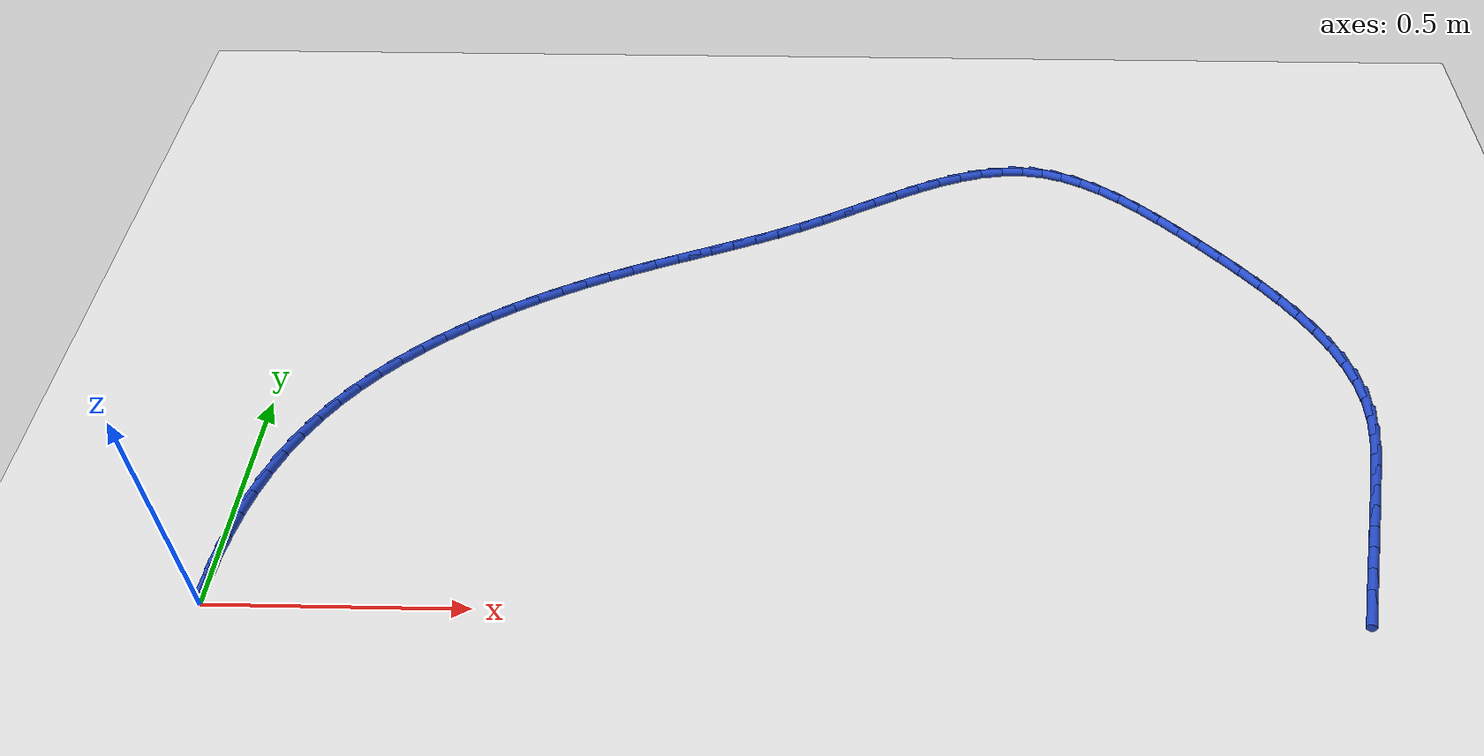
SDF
<sdf version="1.6">
 <world name="default">
  <model name="ground_plane">
   <static>1</static>
   <link name="link">
    <collision name="collision">
     <geometry><plane><normal>0 0 1</normal><size>100 100</size></plane></geometry>
     <surface><friction><ode><mu>100</mu><mu2>50</mu2></ode></friction></surface>
    </collision>
    <visual name="visual">
     <cast_shadows>0</cast_shadows>
     <geometry><plane><normal>0 0 1</normal><size>100 100</size></plane></geometry>
     <material>
      <script><uri>file://media/materials/scripts/gazebo.material</uri><name>Gazebo/WhiteGlow</name></script>
     </material>
    </visual>
   </link>
  </model>
  <model name="line">
   <link name="link_1">
    <pose>0.0008200648605110411 0.05451595755726912 0.01 0 1.57 1.5050673711794076</pose>
    <collision name="collision">
     <geometry><cylinder><radius>0.01</radius><length>0.08</length></cylinder></geometry>
    </collision>
    <visual name="visual">
     <material>
      <script><name>Gazebo/Blue</name><uri>file://media/materials/scripts/gazebo.material</uri></script>
     </material>
     <geometry><cylinder><radius>0.01</radius><length>0.08</length></cylinder></geometry>
    </visual>
   </link>
   <link name="link_2">
    <pose>0.004396346790956089 0.10884711518278226 0.01 0 1.57 1.4518409554157006</pose>
    <collision name="collision">
     <geometry><cylinder><radius>0.01</radius><length>0.08</length></cylinder></geometry>
    </collision>
    <visual name="visual">
     <material>
      <script><name>Gazebo/Blue</name><uri>file://media/materials/scripts/gazebo.material</uri></script>
     </material>
     <geometry><cylinder><radius>0.01</radius><length>0.08</length></cylinder></geometry>
    </visual>
   </link>
   <link name="link_3">
    <pose>0.010837198205843404 0.16273659051005376 0.01 0 1.57 1.3956293065094485</pose>
    <collision name="collision">
     <geometry><cylinder><radius>0.01</radius><length>0.08</length></cylinder></geometry>
    </collision>
    <visual name="visual">
     <material>
      <script><name>Gazebo/Blue</name><uri>file://media/materials/scripts/gazebo.material</uri></script>
     </material>
     <geometry><cylinder><radius>0.01</radius><length>0.08</length></cylinder></geometry>
    </visual>
   </link>
   <link name="link_4">
    <pose>0.020250971519681284 0.21592750117259812 0.01 0 1.57 1.3360020327878124</pose>
    <collision name="collision">
     <geometry><cylinder><radius>0.01</radius><length>0.08</length></cylinder></geometry>
    </collision>
    <visual name="visual">
     <material>
      <script><name>Gazebo/Blue</name><uri>file://media/materials/scripts/gazebo.material</uri></script>
     </material>
     <geometry><cylinder><radius>0.01</radius><length>0.08</length></cylinder></geometry>
    </visual>
   </link>
   <link name="link_5">
    <pose>0.03274601914697797 0.26816296480392954 0.01 0 1.57 1.2725615272935986</pose>
    <collision name="collision">
     <geometry><cylinder><radius>0.01</radius><length>0.08</length></cylinder></geometry>
    </collision>
    <visual name="visual">
     <material>
      <script><name>Gazebo/Blue</name><uri>file://media/materials/scripts/gazebo.material</uri></script>
     </material>
     <geometry><cylinder><radius>0.01</radius><length>0.08</length></cylinder></geometry>
    </visual>
   </link>
   <link name="link_6">
    <pose>0.04843069350224178 0.31918609903756245 0.01 0 1.57 1.204968856224903</pose>
    <collision name="collision">
     <geometry><cylinder><radius>0.01</radius><length>0.08</length></cylinder></geometry>
    </collision>
    <visual name="visual">
     <material>
      <script><name>Gazebo/Blue</name><uri>file://media/materials/scripts/gazebo.material</uri></script>
     </material>
     <geometry><cylinder><radius>0.01</radius><length>0.08</length></cylinder></geometry>
    </visual>
   </link>
   <link name="link_7">
    <pose>0.06741334699998093 0.36874002150701113 0.01 0 1.57 1.1329794530025175</pose>
    <collision name="collision">
     <geometry><cylinder><radius>0.01</radius><length>0.08</length></cylinder></geometry>
    </collision>
    <visual name="visual">
     <material>
      <script><name>Gazebo/Blue</name><uri>file://media/materials/scripts/gazebo.material</uri></script>
     </material>
     <geometry><cylinder><radius>0.01</radius><length>0.08</length></cylinder></geometry>
    </visual>
   </link>
   <link name="link_8">
    <pose>0.08980233205470373 0.4165678498457899 0.01 0 1.57 1.0568599665323917</pose>
    <collision name="collision">
     <geometry><cylinder><radius>0.01</radius><length>0.08</length></cylinder></geometry>
    </collision>
    <visual name="visual">
     <material>
      <script><name>Gazebo/Blue</name><uri>file://media/materials/scripts/gazebo.material</uri></script>
     </material>
     <geometry><cylinder><radius>0.01</radius><length>0.08</length></cylinder></geometry>
    </visual>
   </link>
   <link name="link_9">
    <pose>0.11569056184922914 0.4624252130635277 0.01 0 1.57 0.9817550211952442</pose>
    <collision name="collision">
     <geometry><cylinder><radius>0.01</radius><length>0.08</length></cylinder></geometry>
    </collision>
    <visual name="visual">
     <material>
      <script><name>Gazebo/Blue</name><uri>file://media/materials/scripts/gazebo.material</uri></script>
     </material>
     <geometry><cylinder><radius>0.01</radius><length>0.08</length></cylinder></geometry>
    </visual>
   </link>
   <link name="link_10">
    <pose>0.14496345431723184 0.5062358865618725 0.01 0 1.57 0.9115878039380247</pose>
    <collision name="collision">
     <geometry><cylinder><radius>0.01</radius><length>0.08</length></cylinder></geometry>
    </collision>
    <visual name="visual">
     <material>
      <script><name>Gazebo/Blue</name><uri>file://media/materials/scripts/gazebo.material</uri></script>
     </material>
     <geometry><cylinder><radius>0.01</radius><length>0.08</length></cylinder></geometry>
    </visual>
   </link>
   <link name="link_11">
    <pose>0.17735793236877923 0.5480439805576308 0.01 0 1.57 0.8466045933925027</pose>
    <collision name="collision">
     <geometry><cylinder><radius>0.01</radius><length>0.08</length></cylinder></geometry>
    </collision>
    <visual name="visual">
     <material>
      <script><name>Gazebo/Blue</name><uri>file://media/materials/scripts/gazebo.material</uri></script>
     </material>
     <geometry><cylinder><radius>0.01</radius><length>0.08</length></cylinder></geometry>
    </visual>
   </link>
   <link name="link_12">
    <pose>0.21260769531818516 0.5878962175490843 0.01 0 1.57 0.7867752115742281</pose>
    <collision name="collision">
     <geometry><cylinder><radius>0.01</radius><length>0.08</length></cylinder></geometry>
    </collision>
    <visual name="visual">
     <material>
      <script><name>Gazebo/Blue</name><uri>file://media/materials/scripts/gazebo.material</uri></script>
     </material>
     <geometry><cylinder><radius>0.01</radius><length>0.08</length></cylinder></geometry>
    </visual>
   </link>
   <link name="link_13">
    <pose>0.2504464424797634 0.6258393200345136 0.01 0 1.57 0.7319257513694877</pose>
    <collision name="collision">
     <geometry><cylinder><radius>0.01</radius><length>0.08</length></cylinder></geometry>
    </collision>
    <visual name="visual">
     <material>
      <script><name>Gazebo/Blue</name><uri>file://media/materials/scripts/gazebo.material</uri></script>
     </material>
     <geometry><cylinder><radius>0.01</radius><length>0.08</length></cylinder></geometry>
    </visual>
   </link>
   <link name="link_14">
    <pose>0.29060787316782766 0.6619200105121996 0.01 0 1.57 0.6817888142367023</pose>
    <collision name="collision">
     <geometry><cylinder><radius>0.01</radius><length>0.08</length></cylinder></geometry>
    </collision>
    <visual name="visual">
     <material>
      <script><name>Gazebo/Blue</name><uri>file://media/materials/scripts/gazebo.material</uri></script>
     </material>
     <geometry><cylinder><radius>0.01</radius><length>0.08</length></cylinder></geometry>
    </visual>
   </link>
   <link name="link_15">
    <pose>0.332825686696692 0.6961850114804236 0.01 0 1.57 0.6360445579904854</pose>
    <collision name="collision">
     <geometry><cylinder><radius>0.01</radius><length>0.08</length></cylinder></geometry>
    </collision>
    <visual name="visual">
     <material>
      <script><name>Gazebo/Blue</name><uri>file://media/materials/scripts/gazebo.material</uri></script>
     </material>
     <geometry><cylinder><radius>0.01</radius><length>0.08</length></cylinder></geometry>
    </visual>
   </link>
   <link name="link_16">
    <pose>0.3768335823806701 0.7286810454374665 0.01 0 1.57 0.5943515515108755</pose>
    <collision name="collision">
     <geometry><cylinder><radius>0.01</radius><length>0.08</length></cylinder></geometry>
    </collision>
    <visual name="visual">
     <material>
      <script><name>Gazebo/Blue</name><uri>file://media/materials/scripts/gazebo.material</uri></script>
     </material>
     <geometry><cylinder><radius>0.01</radius><length>0.08</length></cylinder></geometry>
    </visual>
   </link>
   <link name="link_17">
    <pose>0.4223652595340758 0.7594548348816091 0.01 0 1.57 0.5563683840970425</pose>
    <collision name="collision">
     <geometry><cylinder><radius>0.01</radius><length>0.08</length></cylinder></geometry>
    </collision>
    <visual name="visual">
     <material>
      <script><name>Gazebo/Blue</name><uri>file://media/materials/scripts/gazebo.material</uri></script>
     </material>
     <geometry><cylinder><radius>0.01</radius><length>0.08</length></cylinder></geometry>
    </visual>
   </link>
   <link name="link_18">
    <pose>0.469154417471223 0.7885531023111331 0.01 0 1.57 0.5217678002501723</pose>
    <collision name="collision">
     <geometry><cylinder><radius>0.01</radius><length>0.08</length></cylinder></geometry>
    </collision>
    <visual name="visual">
     <material>
      <script><name>Gazebo/Blue</name><uri>file://media/materials/scripts/gazebo.material</uri></script>
     </material>
     <geometry><cylinder><radius>0.01</radius><length>0.08</length></cylinder></geometry>
    </visual>
   </link>
   <link name="link_19">
    <pose>0.5169347555064254 0.8160225702243189 0.01 0 1.57 0.4902452585843131</pose>
    <collision name="collision">
     <geometry><cylinder><radius>0.01</radius><length>0.08</length></cylinder></geometry>
    </collision>
    <visual name="visual">
     <material>
      <script><name>Gazebo/Blue</name><uri>file://media/materials/scripts/gazebo.material</uri></script>
     </material>
     <geometry><cylinder><radius>0.01</radius><length>0.08</length></cylinder></geometry>
    </visual>
   </link>
   <link name="link_20">
    <pose>0.5654399729539971 0.8419099611194478 0.01 0 1.57 0.4615235999922261</pose>
    <collision name="collision">
     <geometry><cylinder><radius>0.01</radius><length>0.08</length></cylinder></geometry>
    </collision>
    <visual name="visual">
     <material>
      <script><name>Gazebo/Blue</name><uri>file://media/materials/scripts/gazebo.material</uri></script>
     </material>
     <geometry><cylinder><radius>0.01</radius><length>0.08</length></cylinder></geometry>
    </visual>
   </link>
   <link name="link_21">
    <pose>0.6144037691282513 0.8662619974948006 0.01 0 1.57 0.4353551821730655</pose>
    <collision name="collision">
     <geometry><cylinder><radius>0.01</radius><length>0.08</length></cylinder></geometry>
    </collision>
    <visual name="visual">
     <material>
      <script><name>Gazebo/Blue</name><uri>file://media/materials/scripts/gazebo.material</uri></script>
     </material>
     <geometry><cylinder><radius>0.01</radius><length>0.08</length></cylinder></geometry>
    </visual>
   </link>
   <link name="link_22">
    <pose>0.6635598433435026 0.8891254018486585 0.01 0 1.57 0.41154979110121537</pose>
    <collision name="collision">
     <geometry><cylinder><radius>0.01</radius><length>0.08</length></cylinder></geometry>
    </collision>
    <visual name="visual">
     <material>
      <script><name>Gazebo/Blue</name><uri>file://media/materials/scripts/gazebo.material</uri></script>
     </material>
     <geometry><cylinder><radius>0.01</radius><length>0.08</length></cylinder></geometry>
    </visual>
   </link>
   <link name="link_23">
    <pose>0.7126441373887852 0.9105494691565788 0.01 0 1.57 0.39162564742065387</pose>
    <collision name="collision">
     <geometry><cylinder><radius>0.01</radius><length>0.08</length></cylinder></geometry>
    </collision>
    <visual name="visual">
     <material>
      <script><name>Gazebo/Blue</name><uri>file://media/materials/scripts/gazebo.material</uri></script>
     </material>
     <geometry><cylinder><radius>0.01</radius><length>0.08</length></cylinder></geometry>
    </visual>
   </link>
   <link name="link_24">
    <pose>0.7615246641967388 0.9307350011257711 0.01 0 1.57 0.37841411007136366</pose>
    <collision name="collision">
     <geometry><cylinder><radius>0.01</radius><length>0.08</length></cylinder></geometry>
    </collision>
    <visual name="visual">
     <material>
      <script><name>Gazebo/Blue</name><uri>file://media/materials/scripts/gazebo.material</uri></script>
     </material>
     <geometry><cylinder><radius>0.01</radius><length>0.08</length></cylinder></geometry>
    </visual>
   </link>
   <link name="link_25">
    <pose>0.8102727350679035 0.9501160152169417 0.01 0 1.57 0.37249266737449443</pose>
    <collision name="collision">
     <geometry><cylinder><radius>0.01</radius><length>0.08</length></cylinder></geometry>
    </collision>
    <visual name="visual">
     <material>
      <script><name>Gazebo/Blue</name><uri>file://media/materials/scripts/gazebo.material</uri></script>
     </material>
     <geometry><cylinder><radius>0.01</radius><length>0.08</length></cylinder></geometry>
    </visual>
   </link>
   <link name="link_26">
    <pose>0.8589769853498858 0.9691464023444392 0.01 0 1.57 0.3740178413786772</pose>
    <collision name="collision">
     <geometry><cylinder><radius>0.01</radius><length>0.08</length></cylinder></geometry>
    </collision>
    <visual name="visual">
     <material>
      <script><name>Gazebo/Blue</name><uri>file://media/materials/scripts/gazebo.material</uri></script>
     </material>
     <geometry><cylinder><radius>0.01</radius><length>0.08</length></cylinder></geometry>
    </visual>
   </link>
   <link name="link_27">
    <pose>0.9077260503902914 0.9882800534226118 0.01 0 1.57 0.3829341860649818</pose>
    <collision name="collision">
     <geometry><cylinder><radius>0.01</radius><length>0.08</length></cylinder></geometry>
    </collision>
    <visual name="visual">
     <material>
      <script><name>Gazebo/Blue</name><uri>file://media/materials/scripts/gazebo.material</uri></script>
     </material>
     <geometry><cylinder><radius>0.01</radius><length>0.08</length></cylinder></geometry>
    </visual>
   </link>
   <link name="link_28">
    <pose>0.956608565536727 1.007970859365809 0.01 0 1.57 0.39897609293077424</pose>
    <collision name="collision">
     <geometry><cylinder><radius>0.01</radius><length>0.08</length></cylinder></geometry>
    </collision>
    <visual name="visual">
     <material>
      <script><name>Gazebo/Blue</name><uri>file://media/materials/scripts/gazebo.material</uri></script>
     </material>
     <geometry><cylinder><radius>0.01</radius><length>0.08</length></cylinder></geometry>
    </visual>
   </link>
   <link name="link_29">
    <pose>1.0057131661367986 1.0286727110883789 0.01 0 1.57 0.4216734961333918</pose>
    <collision name="collision">
     <geometry><cylinder><radius>0.01</radius><length>0.08</length></cylinder></geometry>
    </collision>
    <visual name="visual">
     <material>
      <script><name>Gazebo/Blue</name><uri>file://media/materials/scripts/gazebo.material</uri></script>
     </material>
     <geometry><cylinder><radius>0.01</radius><length>0.08</length></cylinder></geometry>
    </visual>
   </link>
   <link name="link_30">
    <pose>1.0551284875381124 1.0508394995046701 0.01 0 1.57 0.4503636769735263</pose>
    <collision name="collision">
     <geometry><cylinder><radius>0.01</radius><length>0.08</length></cylinder></geometry>
    </collision>
    <visual name="visual">
     <material>
      <script><name>Gazebo/Blue</name><uri>file://media/materials/scripts/gazebo.material</uri></script>
     </material>
     <geometry><cylinder><radius>0.01</radius><length>0.08</length></cylinder></geometry>
    </visual>
   </link>
   <link name="link_31">
    <pose>1.1049431589496737 1.0749250765799137 0.01 0 1.57 0.4800818102077247</pose>
    <collision name="collision">
     <geometry><cylinder><radius>0.01</radius><length>0.08</length></cylinder></geometry>
    </collision>
    <visual name="visual">
     <material>
      <script><name>Gazebo/Blue</name><uri>file://media/materials/scripts/gazebo.material</uri></script>
     </material>
     <geometry><cylinder><radius>0.01</radius><length>0.08</length></cylinder></geometry>
    </visual>
   </link>
   <link name="link_32">
    <pose>1.1552003304086138 1.1010947311885868 0.01 0 1.57 0.496960831944077</pose>
    <collision name="collision">
     <geometry><cylinder><radius>0.01</radius><length>0.08</length></cylinder></geometry>
    </collision>
    <visual name="visual">
     <material>
      <script><name>Gazebo/Blue</name><uri>file://media/materials/scripts/gazebo.material</uri></script>
     </material>
     <geometry><cylinder><radius>0.01</radius><length>0.08</length></cylinder></geometry>
    </visual>
   </link>
   <link name="link_33">
    <pose>1.2057883932143312 1.1285318156869555 0.01 0 1.57 0.49910432871639004</pose>
    <collision name="collision">
     <geometry><cylinder><radius>0.01</radius><length>0.08</length></cylinder></geometry>
    </collision>
    <visual name="visual">
     <material>
      <script><name>Gazebo/Blue</name><uri>file://media/materials/scripts/gazebo.material</uri></script>
     </material>
     <geometry><cylinder><radius>0.01</radius><length>0.08</length></cylinder></geometry>
    </visual>
   </link>
   <link name="link_34">
    <pose>1.256562850258894 1.1562110071173273 0.01 0 1.57 0.48679470036189326</pose>
    <collision name="collision">
     <geometry><cylinder><radius>0.01</radius><length>0.08</length></cylinder></geometry>
    </collision>
    <visual name="visual">
     <material>
      <script><name>Gazebo/Blue</name><uri>file://media/materials/scripts/gazebo.material</uri></script>
     </material>
     <geometry><cylinder><radius>0.01</radius><length>0.08</length></cylinder></geometry>
    </visual>
   </link>
   <link name="link_35">
    <pose>1.3073792044343693 1.1831069825220106 0.01 0 1.57 0.4593882063054732</pose>
    <collision name="collision">
     <geometry><cylinder><radius>0.01</radius><length>0.08</length></cylinder></geometry>
    </collision>
    <visual name="visual">
     <material>
      <script><name>Gazebo/Blue</name><uri>file://media/materials/scripts/gazebo.material</uri></script>
     </material>
     <geometry><cylinder><radius>0.01</radius><length>0.08</length></cylinder></geometry>
    </visual>
   </link>
   <link name="link_36">
    <pose>1.3580929586328243 1.2081944189433134 0.01 0 1.57 0.41530751775124203</pose>
    <collision name="collision">
     <geometry><cylinder><radius>0.01</radius><length>0.08</length></cylinder></geometry>
    </collision>
    <visual name="visual">
     <material>
      <script><name>Gazebo/Blue</name><uri>file://media/materials/scripts/gazebo.material</uri></script>
     </material>
     <geometry><cylinder><radius>0.01</radius><length>0.08</length></cylinder></geometry>
    </visual>
   </link>
   <link name="link_37">
    <pose>1.4085596157463276 1.2304479934235437 0.01 0 1.57 0.35203496237146453</pose>
    <collision name="collision">
     <geometry><cylinder><radius>0.01</radius><length>0.08</length></cylinder></geometry>
    </collision>
    <visual name="visual">
     <material>
      <script><name>Gazebo/Blue</name><uri>file://media/materials/scripts/gazebo.material</uri></script>
     </material>
     <geometry><cylinder><radius>0.01</radius><length>0.08</length></cylinder></geometry>
    </visual>
   </link>
   <link name="link_38">
    <pose>1.4586346786669466 1.2488423830050095 0.01 0 1.57 0.26623801589896795</pose>
    <collision name="collision">
     <geometry><cylinder><radius>0.01</radius><length>0.08</length></cylinder></geometry>
    </collision>
    <visual name="visual">
     <material>
      <script><name>Gazebo/Blue</name><uri>file://media/materials/scripts/gazebo.material</uri></script>
     </material>
     <geometry><cylinder><radius>0.01</radius><length>0.08</length></cylinder></geometry>
    </visual>
   </link>
   <link name="link_39">
    <pose>1.5081736502867489 1.2623522647300194 0.01 0 1.57 0.15431593757000223</pose>
    <collision name="collision">
     <geometry><cylinder><radius>0.01</radius><length>0.08</length></cylinder></geometry>
    </collision>
    <visual name="visual">
     <material>
      <script><name>Gazebo/Blue</name><uri>file://media/materials/scripts/gazebo.material</uri></script>
     </material>
     <geometry><cylinder><radius>0.01</radius><length>0.08</length></cylinder></geometry>
    </visual>
   </link>
   <link name="link_40">
    <pose>1.5570320334978012 1.2699523156408798 0.01 0 1.57 0.013841537188865709</pose>
    <collision name="collision">
     <geometry><cylinder><radius>0.01</radius><length>0.08</length></cylinder></geometry>
    </collision>
    <visual name="visual">
     <material>
      <script><name>Gazebo/Blue</name><uri>file://media/materials/scripts/gazebo.material</uri></script>
     </material>
     <geometry><cylinder><radius>0.01</radius><length>0.08</length></cylinder></geometry>
    </visual>
   </link>
   <link name="link_41">
    <pose>1.6050653311921725 1.2706172127799007 0.01 0 1.57 -0.1530114130559788</pose>
    <collision name="collision">
     <geometry><cylinder><radius>0.01</radius><length>0.08</length></cylinder></geometry>
    </collision>
    <visual name="visual">
     <material>
      <script><name>Gazebo/Blue</name><uri>file://media/materials/scripts/gazebo.material</uri></script>
     </material>
     <geometry><cylinder><radius>0.01</radius><length>0.08</length></cylinder></geometry>
    </visual>
   </link>
   <link name="link_42">
    <pose>1.6521323606039902 1.2633586847430738 0.01 0 1.57 -0.3194102189316025</pose>
    <collision name="collision">
     <geometry><cylinder><radius>0.01</radius><length>0.08</length></cylinder></geometry>
    </collision>
    <visual name="visual">
     <material>
      <script><name>Gazebo/Blue</name><uri>file://media/materials/scripts/gazebo.material</uri></script>
     </material>
     <geometry><cylinder><radius>0.01</radius><length>0.08</length></cylinder></geometry>
    </visual>
   </link>
   <link name="link_43">
    <pose>1.698176195550206 1.2481303777815838 0.01 0 1.57 -0.4587249353660347</pose>
    <collision name="collision">
     <geometry><cylinder><radius>0.01</radius><length>0.08</length></cylinder></geometry>
    </collision>
    <visual name="visual">
     <material>
      <script><name>Gazebo/Blue</name><uri>file://media/materials/scripts/gazebo.material</uri></script>
     </material>
     <geometry><cylinder><radius>0.01</radius><length>0.08</length></cylinder></geometry>
    </visual>
   </link>
   <link name="link_44">
    <pose>1.7432288827547004 1.2258805803342752 0.01 0 1.57 -0.570161706124903</pose>
    <collision name="collision">
     <geometry><cylinder><radius>0.01</radius><length>0.08</length></cylinder></geometry>
    </collision>
    <visual name="visual">
     <material>
      <script><name>Gazebo/Blue</name><uri>file://media/materials/scripts/gazebo.material</uri></script>
     </material>
     <geometry><cylinder><radius>0.01</radius><length>0.08</length></cylinder></geometry>
    </visual>
   </link>
   <link name="link_45">
    <pose>1.7873267274254852 1.1976051871071476 0.01 0 1.57 -0.6570073161786348</pose>
    <collision name="collision">
     <geometry><cylinder><radius>0.01</radius><length>0.08</length></cylinder></geometry>
    </collision>
    <visual name="visual">
     <material>
      <script><name>Gazebo/Blue</name><uri>file://media/materials/scripts/gazebo.material</uri></script>
     </material>
     <geometry><cylinder><radius>0.01</radius><length>0.08</length></cylinder></geometry>
    </visual>
   </link>
   <link name="link_46">
    <pose>1.8305060347705737 1.1643000928061977 0.01 0 1.57 -0.7232179390403781</pose>
    <collision name="collision">
     <geometry><cylinder><radius>0.01</radius><length>0.08</length></cylinder></geometry>
    </collision>
    <visual name="visual">
     <material>
      <script><name>Gazebo/Blue</name><uri>file://media/materials/scripts/gazebo.material</uri></script>
     </material>
     <geometry><cylinder><radius>0.01</radius><length>0.08</length></cylinder></geometry>
    </visual>
   </link>
   <link name="link_47">
    <pose>1.8728031099979794 1.1269611921374258 0.01 0 1.57 -0.7722697137196393</pose>
    <collision name="collision">
     <geometry><cylinder><radius>0.01</radius><length>0.08</length></cylinder></geometry>
    </collision>
    <visual name="visual">
     <material>
      <script><name>Gazebo/Blue</name><uri>file://media/materials/scripts/gazebo.material</uri></script>
     </material>
     <geometry><cylinder><radius>0.01</radius><length>0.08</length></cylinder></geometry>
    </visual>
   </link>
   <link name="link_48">
    <pose>1.9142542583157152 1.0865843798068282 0.01 0 1.57 -0.8067926237513624</pose>
    <collision name="collision">
     <geometry><cylinder><radius>0.01</radius><length>0.08</length></cylinder></geometry>
    </collision>
    <visual name="visual">
     <material>
      <script><name>Gazebo/Blue</name><uri>file://media/materials/scripts/gazebo.material</uri></script>
     </material>
     <geometry><cylinder><radius>0.01</radius><length>0.08</length></cylinder></geometry>
    </visual>
   </link>
   <link name="link_49">
    <pose>1.9548957849317943 1.044165550520405 0.01 0 1.57 -0.8286929260010305</pose>
    <collision name="collision">
     <geometry><cylinder><radius>0.01</radius><length>0.08</length></cylinder></geometry>
    </collision>
    <visual name="visual">
     <material>
      <script><name>Gazebo/Blue</name><uri>file://media/materials/scripts/gazebo.material</uri></script>
     </material>
     <geometry><cylinder><radius>0.01</radius><length>0.08</length></cylinder></geometry>
    </visual>
   </link>
   <link name="link_50">
    <pose>1.9947591201268489 1.0006919044576394 0.01 0 1.57 -0.8465490979296157</pose>
    <collision name="collision">
     <geometry><cylinder><radius>0.01</radius><length>0.08</length></cylinder></geometry>
    </collision>
    <visual name="visual">
     <material>
      <script><name>Gazebo/Blue</name><uri>file://media/materials/scripts/gazebo.material</uri></script>
     </material>
     <geometry><cylinder><radius>0.01</radius><length>0.08</length></cylinder></geometry>
    </visual>
   </link>
   <link name="link_51">
    <pose>2.033643117156977 0.9567358362126579 0.01 0 1.57 -0.8717102694216153</pose>
    <collision name="collision">
     <geometry><cylinder><radius>0.01</radius><length>0.08</length></cylinder></geometry>
    </collision>
    <visual name="visual">
     <material>
      <script><name>Gazebo/Blue</name><uri>file://media/materials/scripts/gazebo.material</uri></script>
     </material>
     <geometry><cylinder><radius>0.01</radius><length>0.08</length></cylinder></geometry>
    </visual>
   </link>
   <link name="link_52">
    <pose>2.0710169210331135 0.9122816993987162 0.01 0 1.57 -0.9056417686828994</pose>
    <collision name="collision">
     <geometry><cylinder><radius>0.01</radius><length>0.08</length></cylinder></geometry>
    </collision>
    <visual name="visual">
     <material>
      <script><name>Gazebo/Blue</name><uri>file://media/materials/scripts/gazebo.material</uri></script>
     </material>
     <geometry><cylinder><radius>0.01</radius><length>0.08</length></cylinder></geometry>
    </visual>
   </link>
   <link name="link_53">
    <pose>2.106324630868863 0.8672691777906644 0.01 0 1.57 -0.9492133114182162</pose>
    <collision name="collision">
     <geometry><cylinder><radius>0.01</radius><length>0.08</length></cylinder></geometry>
    </collision>
    <visual name="visual">
     <material>
      <script><name>Gazebo/Blue</name><uri>file://media/materials/scripts/gazebo.material</uri></script>
     </material>
     <geometry><cylinder><radius>0.01</radius><length>0.08</length></cylinder></geometry>
    </visual>
   </link>
   <link name="link_54">
    <pose>2.139010345777828 0.8216379551633507 0.01 0 1.57 -1.003488408451562</pose>
    <collision name="collision">
     <geometry><cylinder><radius>0.01</radius><length>0.08</length></cylinder></geometry>
    </collision>
    <visual name="visual">
     <material>
      <script><name>Gazebo/Blue</name><uri>file://media/materials/scripts/gazebo.material</uri></script>
     </material>
     <geometry><cylinder><radius>0.01</radius><length>0.08</length></cylinder></geometry>
    </visual>
   </link>
   <link name="link_55">
    <pose>2.168518164873613 0.7753277152916239 0.01 0 1.57 -1.0696393937264592</pose>
    <collision name="collision">
     <geometry><cylinder><radius>0.01</radius><length>0.08</length></cylinder></geometry>
    </collision>
    <visual name="visual">
     <material>
      <script><name>Gazebo/Blue</name><uri>file://media/materials/scripts/gazebo.material</uri></script>
     </material>
     <geometry><cylinder><radius>0.01</radius><length>0.08</length></cylinder></geometry>
    </visual>
   </link>
   <link name="link_56">
    <pose>2.194292187269821 0.728278141950333 0.01 0 1.57 -1.1487739009880455</pose>
    <collision name="collision">
     <geometry><cylinder><radius>0.01</radius><length>0.08</length></cylinder></geometry>
    </collision>
    <visual name="visual">
     <material>
      <script><name>Gazebo/Blue</name><uri>file://media/materials/scripts/gazebo.material</uri></script>
     </material>
     <geometry><cylinder><radius>0.01</radius><length>0.08</length></cylinder></geometry>
    </visual>
   </link>
   <link name="link_57">
    <pose>2.2157765120800557 0.6804289189143266 0.01 0 1.57 -1.241630429142435</pose>
    <collision name="collision">
     <geometry><cylinder><radius>0.01</radius><length>0.08</length></cylinder></geometry>
    </collision>
    <visual name="visual">
     <material>
      <script><name>Gazebo/Blue</name><uri>file://media/materials/scripts/gazebo.material</uri></script>
     </material>
     <geometry><cylinder><radius>0.01</radius><length>0.08</length></cylinder></geometry>
    </visual>
   </link>
   <link name="link_58">
    <pose>2.2324152384179214 0.631719729958454 0.01 0 1.57 -1.3481283788459681</pose>
    <collision name="collision">
     <geometry><cylinder><radius>0.01</radius><length>0.08</length></cylinder></geometry>
    </collision>
    <visual name="visual">
     <material>
      <script><name>Gazebo/Blue</name><uri>file://media/materials/scripts/gazebo.material</uri></script>
     </material>
     <geometry><cylinder><radius>0.01</radius><length>0.08</length></cylinder></geometry>
    </visual>
   </link>
   <link name="link_59">
    <pose>2.2436524653970213 0.5820902588575636 0.01 0 1.57 -1.4668486992127596</pose>
    <collision name="collision">
     <geometry><cylinder><radius>0.01</radius><length>0.08</length></cylinder></geometry>
    </collision>
    <visual name="visual">
     <material>
      <script><name>Gazebo/Blue</name><uri>file://media/materials/scripts/gazebo.material</uri></script>
     </material>
     <geometry><cylinder><radius>0.01</radius><length>0.08</length></cylinder></geometry>
    </visual>
   </link>
   <link name="link_60">
    <pose>2.248932292130959 0.5314801893865047 0.01 0 1.57 1.5481075125097459</pose>
    <collision name="collision">
     <geometry><cylinder><radius>0.01</radius><length>0.08</length></cylinder></geometry>
    </collision>
    <visual name="visual">
     <material>
      <script><name>Gazebo/Blue</name><uri>file://media/materials/scripts/gazebo.material</uri></script>
     </material>
     <geometry><cylinder><radius>0.01</radius><length>0.08</length></cylinder></geometry>
    </visual>
   </link>
   <link name="link_61">
    <pose>2.2477605343638296 0.4798443181246754 0.01 0 1.57 1.4399671318108693</pose>
    <collision name="collision">
     <geometry><cylinder><radius>0.01</radius><length>0.08</length></cylinder></geometry>
    </collision>
    <visual name="visual">
     <material>
      <script><name>Gazebo/Blue</name><uri>file://media/materials/scripts/gazebo.material</uri></script>
     </material>
     <geometry><cylinder><radius>0.01</radius><length>0.08</length></cylinder></geometry>
    </visual>
   </link>
   <link name="link_62">
    <pose>2.240864685935754 0.42743659897975306 0.01 0 1.57 1.3689984859225255</pose>
    <collision name="collision">
     <geometry><cylinder><radius>0.01</radius><length>0.08</length></cylinder></geometry>
    </collision>
    <visual name="visual">
     <material>
      <script><name>Gazebo/Blue</name><uri>file://media/materials/scripts/gazebo.material</uri></script>
     </material>
     <geometry><cylinder><radius>0.01</radius><length>0.08</length></cylinder></geometry>
    </visual>
   </link>
   <link name="link_63">
    <pose>2.2300931912438684 0.37478547762189884 0.01 0 1.57 1.331791199553235</pose>
    <collision name="collision">
     <geometry><cylinder><radius>0.01</radius><length>0.08</length></cylinder></geometry>
    </collision>
    <visual name="visual">
     <material>
      <script><name>Gazebo/Blue</name><uri>file://media/materials/scripts/gazebo.material</uri></script>
     </material>
     <geometry><cylinder><radius>0.01</radius><length>0.08</length></cylinder></geometry>
    </visual>
   </link>
   <link name="link_64">
    <pose>2.2173360190365723 0.32242956795955624 0.01 0 1.57 1.3218586392856893</pose>
    <collision name="collision">
     <geometry><cylinder><radius>0.01</radius><length>0.08</length></cylinder></geometry>
    </collision>
    <visual name="visual">
     <material>
      <script><name>Gazebo/Blue</name><uri>file://media/materials/scripts/gazebo.material</uri></script>
     </material>
     <geometry><cylinder><radius>0.01</radius><length>0.08</length></cylinder></geometry>
    </visual>
   </link>
   <link name="link_65">
    <pose>2.2042141581999113 0.2708115075608614 0.01 0 1.57 1.3188930635925054</pose>
    <collision name="collision">
     <geometry><cylinder><radius>0.01</radius><length>0.08</length></cylinder></geometry>
    </collision>
    <visual name="visual">
     <material>
      <script><name>Gazebo/Blue</name><uri>file://media/materials/scripts/gazebo.material</uri></script>
     </material>
     <geometry><cylinder><radius>0.01</radius><length>0.08</length></cylinder></geometry>
    </visual>
   </link>
   <link name="link_66">
    <pose>2.1911202199004194 0.21993562907030154 0.01 0 1.57 1.3172165367474906</pose>
    <collision name="collision">
     <geometry><cylinder><radius>0.01</radius><length>0.08</length></cylinder></geometry>
    </collision>
    <visual name="visual">
     <material>
      <script><name>Gazebo/Blue</name><uri>file://media/materials/scripts/gazebo.material</uri></script>
     </material>
     <geometry><cylinder><radius>0.01</radius><length>0.08</length></cylinder></geometry>
    </visual>
   </link>
   <link name="link_67">
    <pose>2.178096355582604 0.16968121546786363 0.01 0 1.57 1.3168856185074094</pose>
    <collision name="collision">
     <geometry><cylinder><radius>0.01</radius><length>0.08</length></cylinder></geometry>
    </collision>
    <visual name="visual">
     <material>
      <script><name>Gazebo/Blue</name><uri>file://media/materials/scripts/gazebo.material</uri></script>
     </material>
     <geometry><cylinder><radius>0.01</radius><length>0.08</length></cylinder></geometry>
    </visual>
   </link>
   <link name="link_68">
    <pose>2.165184690235538 0.11992754029380977 0.01 0 1.57 1.3179429791689798</pose>
    <collision name="collision">
     <geometry><cylinder><radius>0.01</radius><length>0.08</length></cylinder></geometry>
    </collision>
    <visual name="visual">
     <material>
      <script><name>Gazebo/Blue</name><uri>file://media/materials/scripts/gazebo.material</uri></script>
     </material>
     <geometry><cylinder><radius>0.01</radius><length>0.08</length></cylinder></geometry>
    </visual>
   </link>
   <link name="link_69">
    <pose>2.152427348848296 0.07055387708840355 0.01 0 1.57 1.3204153591134353</pose>
    <collision name="collision">
     <geometry><cylinder><radius>0.01</radius><length>0.08</length></cylinder></geometry>
    </collision>
    <visual name="visual">
     <material>
      <script><name>Gazebo/Blue</name><uri>file://media/materials/scripts/gazebo.material</uri></script>
     </material>
     <geometry><cylinder><radius>0.01</radius><length>0.08</length></cylinder></geometry>
    </visual>
   </link>
   <link name="link_70">
    <pose>2.139866456409954 0.021439499391907244 0.01 0 1.57 1.3243123006013406</pose>
    <collision name="collision">
     <geometry><cylinder><radius>0.01</radius><length>0.08</length></cylinder></geometry>
    </collision>
    <visual name="visual">
     <material>
      <script><name>Gazebo/Blue</name><uri>file://media/materials/scripts/gazebo.material</uri></script>
     </material>
     <geometry><cylinder><radius>0.01</radius><length>0.08</length></cylinder></geometry>
    </visual>
   </link>
   <link name="link_141">
    <pose>0.0007988390827497003 0.05452456713689853 0.01 0 1.57 1.5561463813723397</pose>
    <collision name="collision">
     <geometry><cylinder><radius>0.01</radius><length>0.08</length></cylinder></geometry>
    </collision>
    <visual name="visual">
     <material>
      <script><name>Gazebo/Blue</name><uri>file://media/materials/scripts/gazebo.material</uri></script>
     </material>
     <geometry><cylinder><radius>0.01</radius><length>0.08</length></cylinder></geometry>
    </visual>
   </link>
  </model>
 </world>
</sdf>
